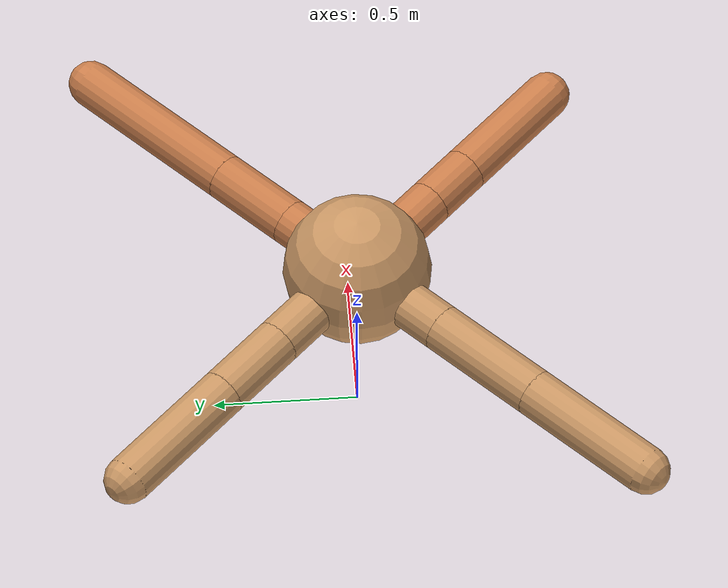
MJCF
<mujoco model="ant">
  <compiler angle="degree" coordinate="local" inertiafromgeom="true" />
  <option integrator="RK4" timestep="0.01" />
  <custom>
    <numeric data="0.0 0.0 0.55 1.0 0.0 0.0 0.0 0.0 1.0 0.0 -1.0 0.0 -1.0 0.0 1.0" name="init_qpos" />
  </custom>
  <default>
    <joint armature="1" damping="1" limited="true" />
    <geom conaffinity="0" condim="3" density="5.0" friction="1.5 0.1 0.1" margin="0.01" rgba="0.8 0.6 0.4 1" />
  </default>
  <worldbody>
    <body name="torso" pos="0 0 0.75">
      <geom name="torso_geom" pos="0 0 0" size="0.25" type="sphere" />

      <body name="front_left_leg" pos="0 0 0">
        <geom fromto="0.0 0.0 0.0 0.21341962773025444 0.21341962773025444 0.0" name="aux_1_geom" size="0.08" type="capsule" rgba=".8 .5 .3 1" />
        <body name="aux_1" pos="0.21341962773025444 0.21341962773025444 0.0">
          <joint axis="0 0 1" name="hip_1" pos="0.0 0.0 0.0" range="-40 40" type="hinge" />
          <geom fromto="0.0 0.0 0.0 0.20794199469220956 0.20794199469220956 0.0" name="left_leg_geom" size="0.08" type="capsule" rgba=".8 .5 .3 1" />
          <body pos="0.20794199469220956 0.20794199469220956 0.0" name="front_left_foot">
            <joint axis="-1 1 0" name="ankle_1" pos="0.0 0.0 0.0" range="30 100" type="hinge" />
            <geom fromto="0.0 0.0 0.0 0.4411569889688178 0.4411569889688178 0.0" name="left_ankle_geom" size="0.08" type="capsule" rgba=".8 .5 .3 1" />
          </body>
        </body>
      </body>
      <body name="front_right_leg" pos="0 0 0">
        <geom fromto="0.0 0.0 0.0 -0.2815546827267037 0.2815546827267037 0.0" name="aux_2_geom" size="0.08" type="capsule" />
        <body name="aux_2" pos="-0.2815546827267037 0.2815546827267037 0.0">
          <joint axis="0 0 1" name="hip_2" pos="0.0 0.0 0.0" range="-40 40" type="hinge" />
          <geom fromto="0.0 0.0 0.0 -0.18915200556207776 0.18915200556207776 0.0" name="right_leg_geom" size="0.08" type="capsule" />
          <body pos="-0.18915200556207776 0.18915200556207776 0.0" name="front_right_foot">
            <joint axis="1 1 0" name="ankle_2" pos="0.0 0.0 0.0" range="-100 -30" type="hinge" />
            <geom fromto="0.0 0.0 0.0 -0.3218149621426529 0.3218149621426529 0.0" name="right_ankle_geom" size="0.08" type="capsule" />
          </body>
        </body>
      </body>
      <body name="left_back_leg" pos="0 0 0">
        <geom fromto="0.0 0.0 0.0 -0.26136566749297696 -0.26136566749297696 0.0" name="aux_3_geom" size="0.08" type="capsule" />
        <body name="aux_3" pos="-0.26136566749297696 -0.26136566749297696 0.0">
          <joint axis="0 0 1" name="hip_3" pos="0.0 0.0 0.0" range="-40 40" type="hinge" />
          <geom fromto="0.0 0.0 0.0 -0.27987475546534485 -0.27987475546534485 0.0" name="back_leg_geom" size="0.08" type="capsule" />
          <body pos="-0.27987475546534485 -0.27987475546534485 0.0" name="left_back_foot">
            <joint axis="-1 1 0" name="ankle_3" pos="0.0 0.0 0.0" range="-100 -30" type="hinge" />
            <geom fromto="0.0 0.0 0.0 -0.32959326916341314 -0.32959326916341314 0.0" name="third_ankle_geom" size="0.08" type="capsule" />
          </body>
        </body>
      </body>
      <body name="right_back_leg" pos="0 0 0">
        <geom fromto="0.0 0.0 0.0 0.2639490618997258 -0.2639490618997258 0.0" name="aux_4_geom" size="0.08" type="capsule" rgba=".8 .5 .3 1" />
        <body name="aux_4" pos="0.2639490618997258 -0.2639490618997258 0.0">
          <joint axis="0 0 1" name="hip_4" pos="0.0 0.0 0.0" range="-40 40" type="hinge" />
          <geom fromto="0.0 0.0 0.0 0.13109731245387074 -0.13109731245387074 0.0" name="rightback_leg_geom" size="0.08" type="capsule" rgba=".8 .5 .3 1" />
          <body pos="0.13109731245387074 -0.13109731245387074 0.0" name="right_back_foot">
            <joint axis="1 1 0" name="ankle_4" pos="0.0 0.0 0.0" range="30 100" type="hinge" />
            <geom fromto="0.0 0.0 0.0 0.3085812736048444 -0.3085812736048444 0.0" name="fourth_ankle_geom" size="0.08" type="capsule" rgba=".8 .5 .3 1" />
          </body>
        </body>
      </body>
    </body>
  </worldbody>
  <actuator>
    <motor ctrllimited="true" ctrlrange="-1.0 1.0" joint="hip_4" gear="150" />
    <motor ctrllimited="true" ctrlrange="-1.0 1.0" joint="ankle_4" gear="150" />
    <motor ctrllimited="true" ctrlrange="-1.0 1.0" joint="hip_1" gear="150" />
    <motor ctrllimited="true" ctrlrange="-1.0 1.0" joint="ankle_1" gear="150" />
    <motor ctrllimited="true" ctrlrange="-1.0 1.0" joint="hip_2" gear="150" />
    <motor ctrllimited="true" ctrlrange="-1.0 1.0" joint="ankle_2" gear="150" />
    <motor ctrllimited="true" ctrlrange="-1.0 1.0" joint="hip_3" gear="150" />
    <motor ctrllimited="true" ctrlrange="-1.0 1.0" joint="ankle_3" gear="150" />
  </actuator>
</mujoco>
